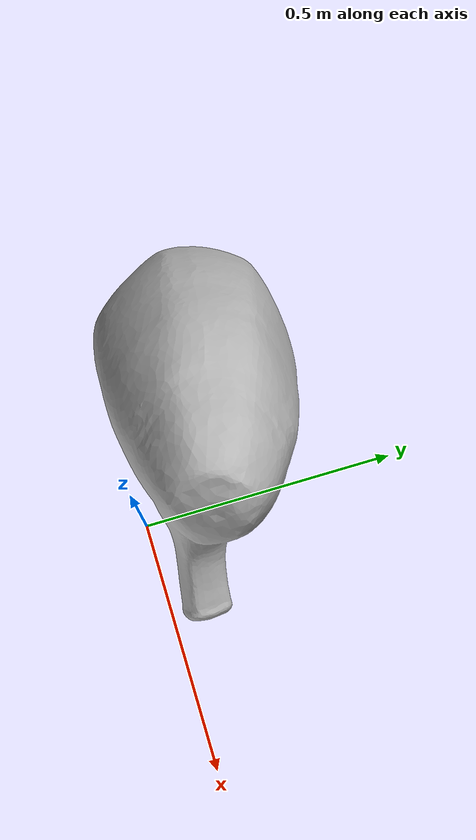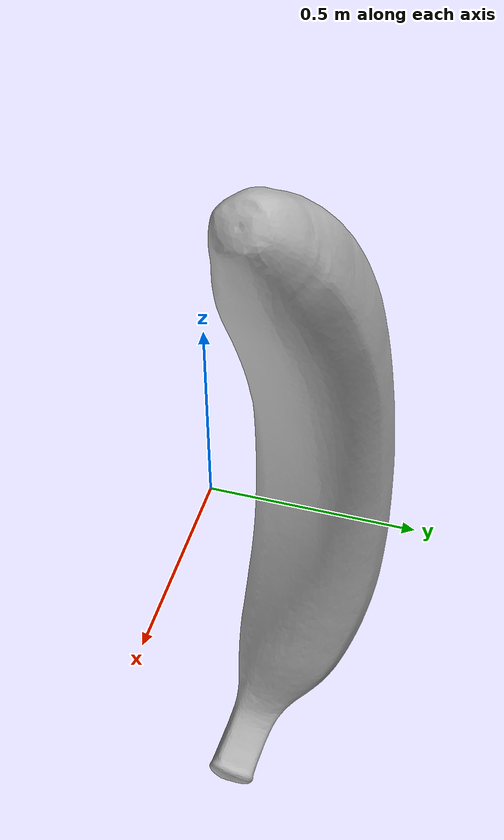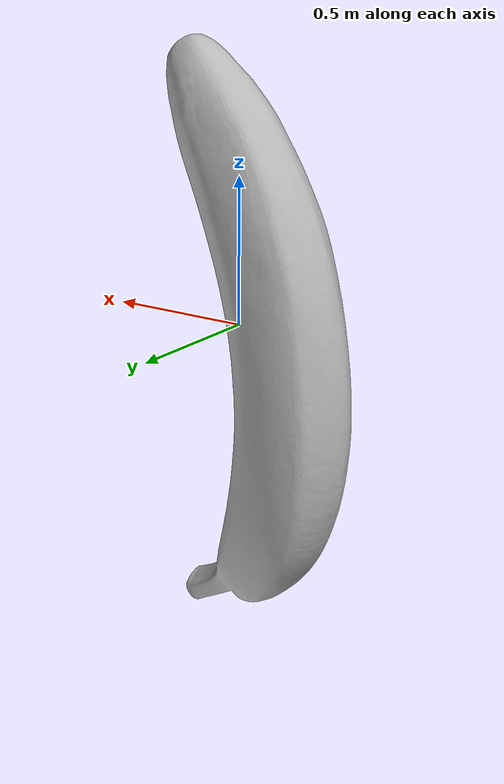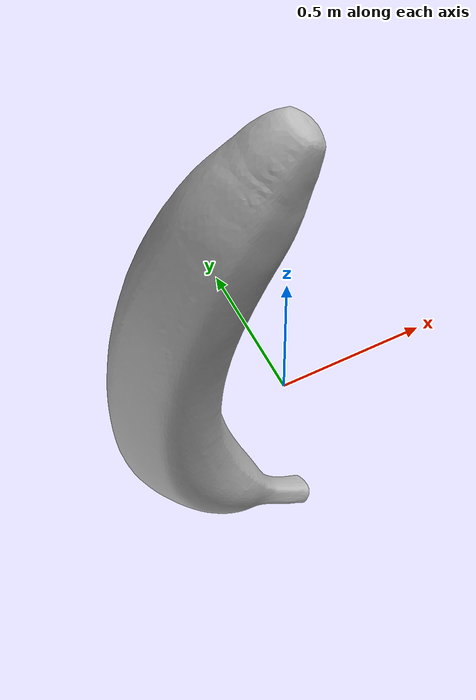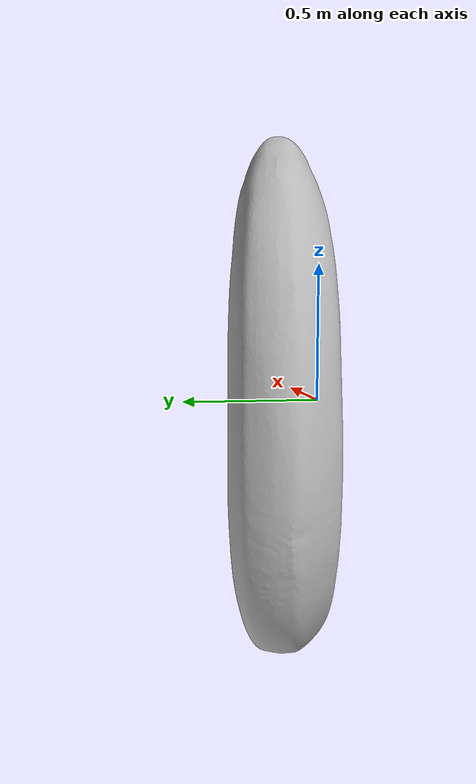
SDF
<?xml version="1.0" ?>
<sdf version="1.5">
  <model name="banana">
	<static>false</static>
    <pose>0 0 0 0 0 0</pose>
    <link name="link">
      <inertial>
        <mass>0.1</mass>
      </inertial>
      <collision name="collision">
        <geometry>
          <mesh>
            <uri>model://Banana/meshes/banana.obj</uri>
            <scale>1 1 1</scale>
          </mesh>
        </geometry>
      </collision>
      <visual name="visual">
        <geometry>
          <mesh>
            <uri>model://Banana/meshes/banana.obj</uri>
          </mesh>
        </geometry>
        <material>
        <script>
        <uri>model://Banana/materials/scripts</uri>
        <uri>model://Banana/materials/textures</uri>
        <name>banaMat/Diffuse</name>
        </script>
        </material>
      </visual>
    </link>
  </model>
</sdf>
